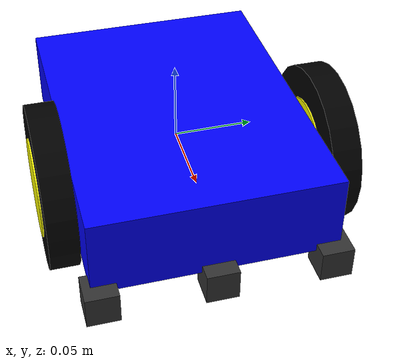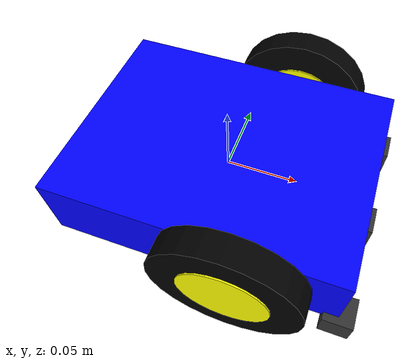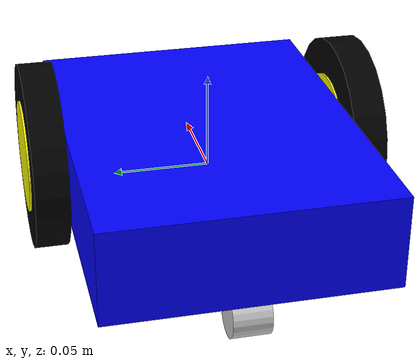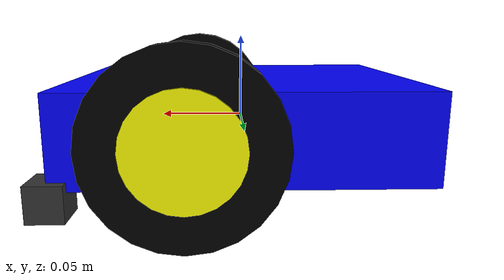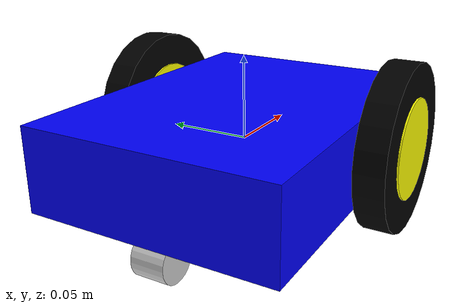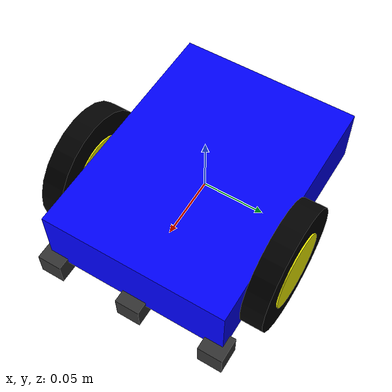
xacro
<?xml version="1.0"?>
<robot name="lfrobot" xmlns:xacro="http://www.ros.org/wiki/xacro">
	<!-- Base link -->
	<link name="base_link">
		<visual>
			<geometry>
				<box size="0.2 0.15 0.05"/>
			</geometry>
			<material name="blue_base">
				<color rgba="0 0 1 1"/>
			</material>
		</visual>
		<collision>
			<geometry>
				<box size="0.2 0.15 0.05"/>
			</geometry>
		</collision>
		<inertial>
			<mass value="1.0"/>
			<inertia ixx="0.01" ixy="0.0" ixz="0.0"
				iyy="0.01" iyz="0.0"
				izz="0.01"/>
		</inertial>
	</link>

	<!-- xacro macro: Left and right wheels -->
	<xacro:macro name="front_wheel" params="link_name">
		<link name="${link_name}">
			<visual>
				<geometry>
					<cylinder radius="0.05" length="0.018"/>
				</geometry>
				<origin rpy="1.5708 0 0"/>
				<material name="outer_wheel">
					<color rgba="0 0 0 1"/>
				</material>
			</visual>
			<visual>
				<geometry>
					<cylinder radius="0.03" length="0.02"/>
				</geometry>
				<origin rpy="1.5708 0 0"/>
				<material name="inner_wheel">
					<color rgba="1 1 0 1"/>
				</material>
			</visual>
			<collision>
				<geometry>
					<cylinder radius="0.05" length="0.02"/>
				</geometry>
				<origin rpy="1.5708 0 0"/>
			</collision>
			<inertial>
				<mass value="0.1"/>
				<inertia ixx="0.0001" ixy="0.0" ixz="0.0"
					iyy="0.0001" iyz="0.0"
					izz="0.0001"/>
			</inertial>
		</link>
	</xacro:macro>

	<!-- Left wheel -->
	<xacro:front_wheel link_name="left_wheel"/>
	<xacro:front_wheel link_name="right_wheel"/>

	<!-- xacro macro: Left and right cameras -->
	<xacro:macro name="camera_link" params="link_name">
		<link name="${link_name}">
			<visual>
				<geometry>
					<box size="0.02 0.02 0.02"/>
				</geometry>
				<material name="camera_material">
					<color rgba="0.2 0.2 0.2 1.0"/>
				</material>
			</visual>
			<collision>
				<geometry>
					<box size="0.02 0.02 0.02"/>
				</geometry>
			</collision>
			<inertial>
				<mass value="0.05"/>
				<inertia ixx="0.00001" ixy="0.0" ixz="0.0"
					iyy="0.00001" iyz="0.0"
					izz="0.00001"/>
			</inertial>
		</link>
	</xacro:macro>

	<!-- Left and right cameras -->
	<xacro:camera_link link_name="left_camera_link"/>
	<xacro:camera_link link_name="middle_camera_link"/>
	<xacro:camera_link link_name="right_camera_link"/>

	<!-- Caster wheel -->
	<link name="caster_wheel">
		<visual>
			<geometry>
				<cylinder radius="0.0125" length="0.02"/>
			</geometry>
			<origin rpy="1.5708 0 0"/>
			<material name="caster_wheel_material">
				<color rgba="0.8 0.8 0.8 1.0"/>
			</material>
		</visual>
		<collision>
			<geometry>
				<cylinder radius="0.0125" length="0.02"/>
			</geometry>
			<origin rpy="1.5708 0 0"/>
		</collision>
		<inertial>
			<mass value="0.1"/>
			<inertia ixx="0.0001" ixy="0.0" ixz="0.0"
				iyy="0.0001" iyz="0.0"
				izz="0.0001"/>
		</inertial>
	</link>

	<!-- Left wheel joint -->
	<joint name="left_wheel_joint" type="continuous">
		<parent link="base_link"/>
		<child link="left_wheel"/>
		<origin xyz="0.03 0.085 0.0"/>
		<axis xyz="0 1 0"/>
	</joint>

	<!-- Right wheel joint -->
	<joint name="right_wheel_joint" type="continuous">
		<parent link="base_link"/>
		<child link="right_wheel"/>
		<origin xyz="0.03 -0.085 0.0"/>
		<axis xyz="0 1 0"/>
	</joint>

	<!-- Caster wheel joint -->
	<joint name="caster_wheel_joint" type="continuous">
		<parent link="base_link"/>
		<child link="caster_wheel"/>
		<origin xyz="-0.085 0 -0.0375"/>
		<axis xyz="0 1 0"/>
	</joint>

	<!-- xacro macro: Camera joint -->
	<xacro:macro name="camera_joint" params="joint_name child_link_name y_coord">
		<joint name="${joint_name}" type="fixed">
			<parent link="base_link"/>
			<child link="${child_link_name}"/>
			<origin xyz="0.1 ${y_coord} -0.03" rpy="0 1.57 0"/>
		</joint>
	</xacro:macro>

	<!-- Camera joints -->
	<xacro:camera_joint joint_name="left_camera_joint" child_link_name="left_camera_link" y_coord="0.07"/>
	<xacro:camera_joint joint_name="middle_camera_joint" child_link_name="middle_camera_link" y_coord="0.0"/>
	<xacro:camera_joint joint_name="right_camera_joint" child_link_name="right_camera_link" y_coord="-0.07"/>

	<!-- xacro macro: Camera sensor -->
	<xacro:macro name="camera_sensor" params="link_name sensor_name topic_name">
		<gazebo reference="${link_name}">
			<pose> 0 0 0 0 0 0 </pose>
			<sensor name="${sensor_name}" type="camera">
				<always_on>true</always_on>
				<topic>${topic_name}</topic>
				<visualize>true</visualize>
				<update_rate>30</update_rate>
				<camera>
					<horizontal_fov>2.0</horizontal_fov>
					<image>
			        	<width>320</width>
			        	<height>240</height>
			        	<format>R8G8B8</format>
			        </image>
		        	<clip>
		        		<near>0.001</near>
						<far>1.0</far>
		    		</clip>
		    	</camera>
			</sensor>
		</gazebo>
	</xacro:macro>

	<!-- Camera sensors -->
	<xacro:camera_sensor
		link_name="left_camera_link"
		sensor_name="left_camera"
		topic_name="left_camera/image_raw"/>
	<xacro:camera_sensor
		link_name="middle_camera_link"
		sensor_name="middle_camera"
		topic_name="middle_camera/image_raw"/>
	<xacro:camera_sensor
		link_name="right_camera_link"
		sensor_name="right_camera"
		topic_name="right_camera/image_raw"/>

	<gazebo>
		<!-- DiffDrive plugin -->
		<plugin
			filename="gz-sim-diff-drive-system"
			name="gz::sim::systems::DiffDrive">
			<left_joint>left_wheel_joint</left_joint>
			<right_joint>right_wheel_joint</right_joint>
			<wheel_separation>0.15</wheel_separation>
			<wheel_radius>0.05</wheel_radius>
			<odom_publish_frequency>1</odom_publish_frequency>
			<topic>cmd_vel</topic>
		</plugin>
	</gazebo>
</robot>
